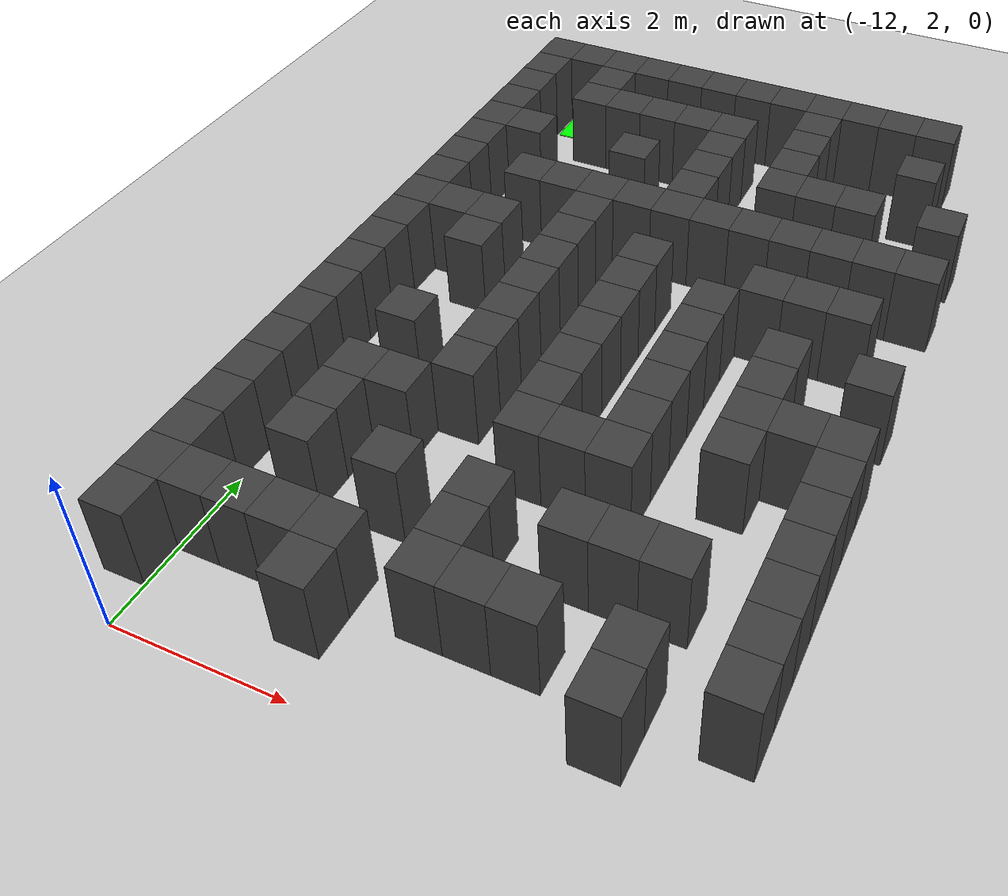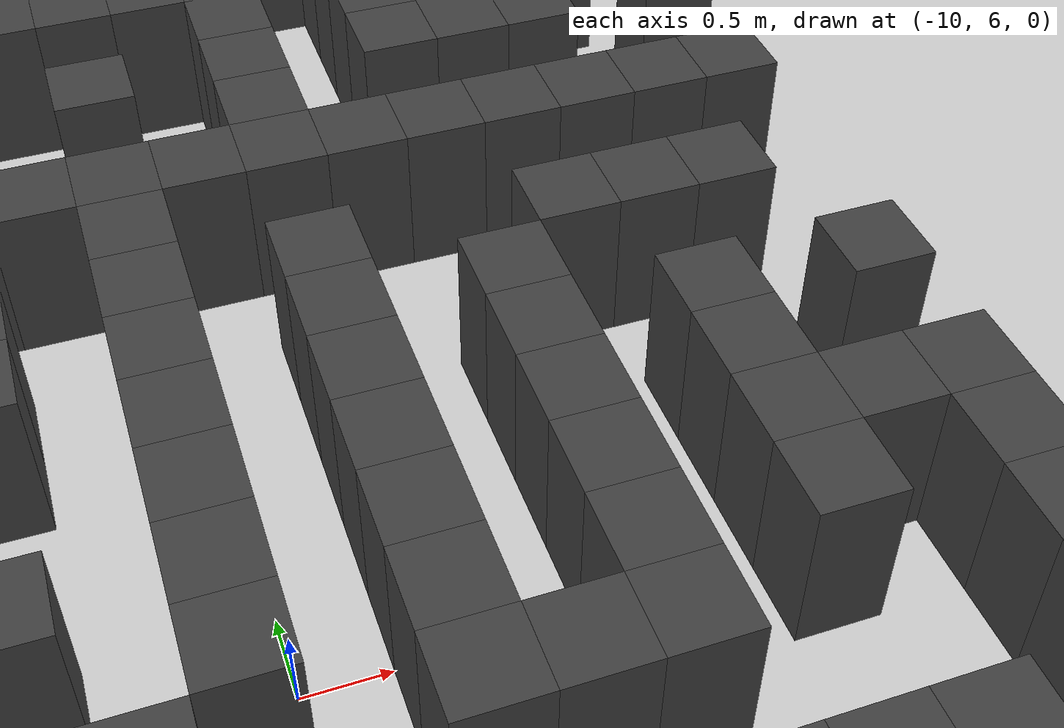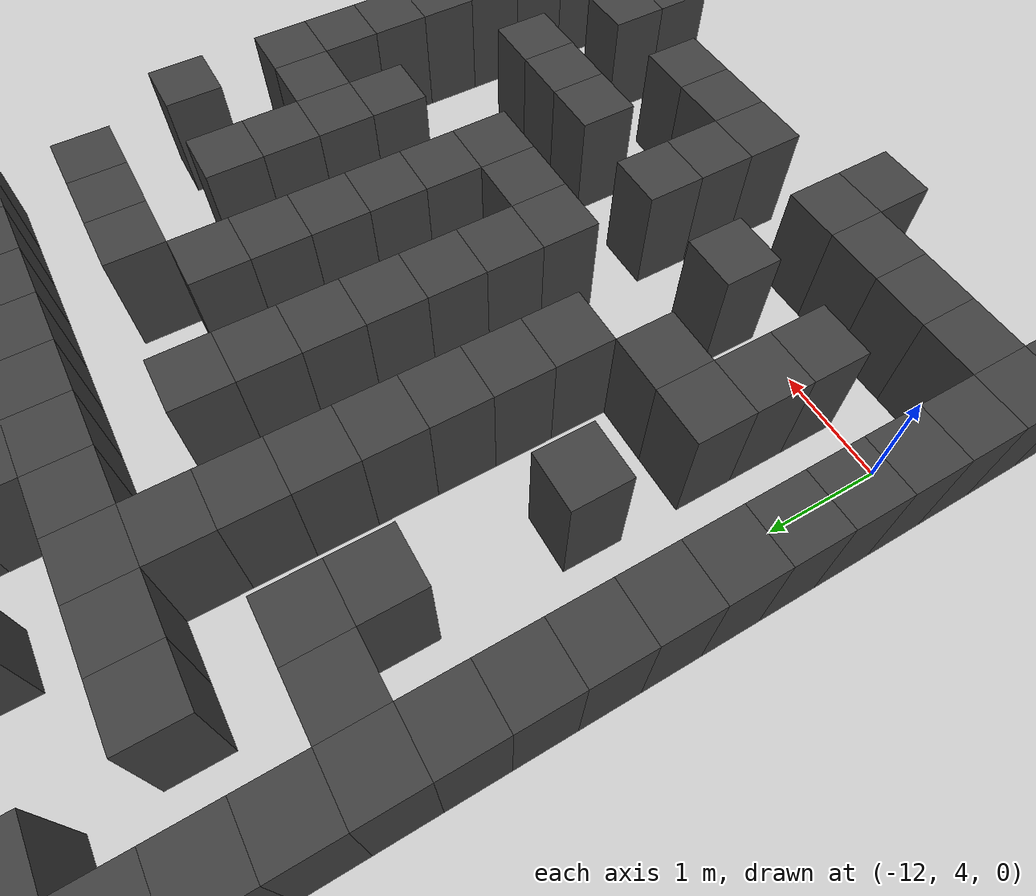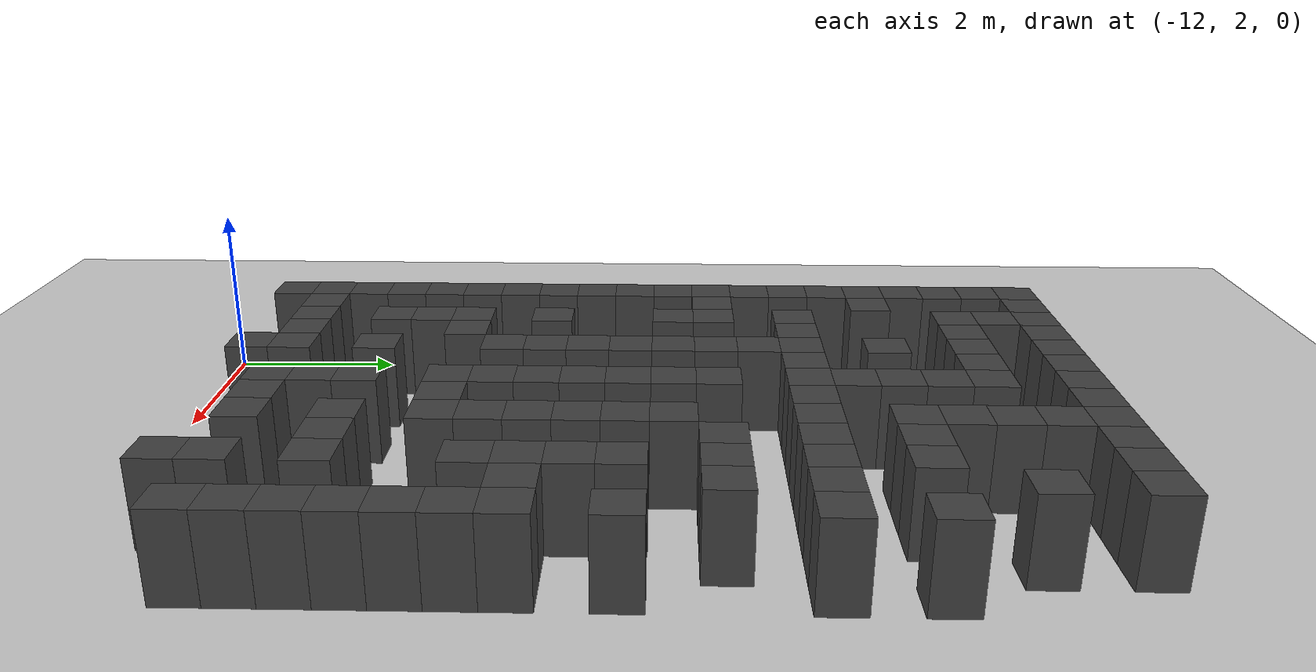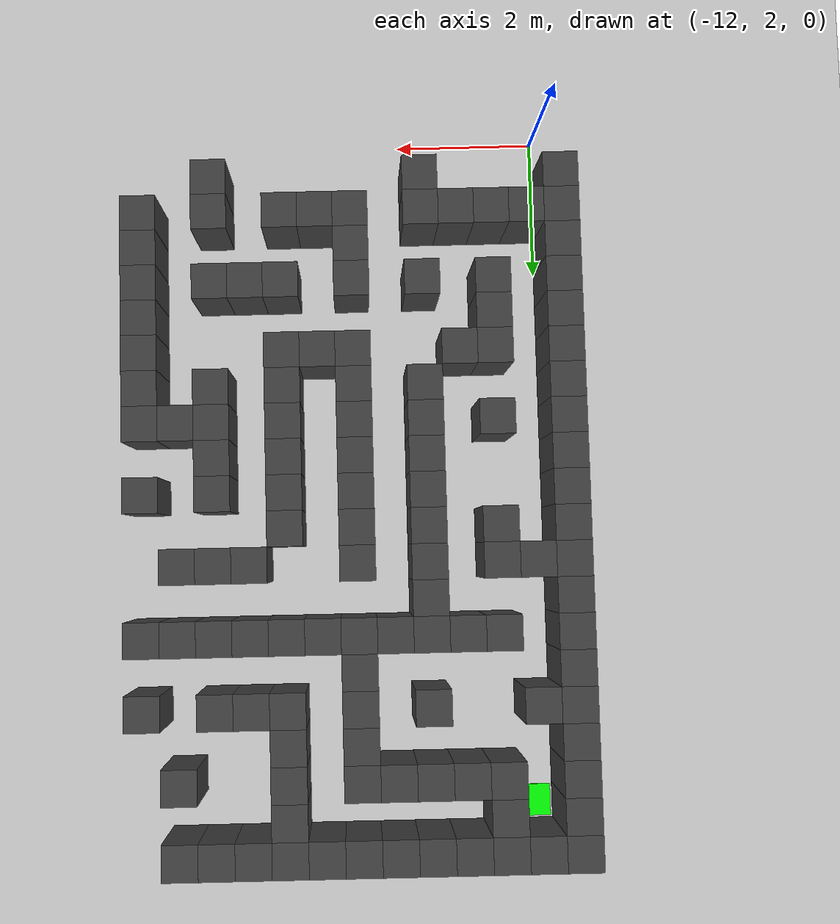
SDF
<sdf version="1.7">
 <world name="map_16048">
  <model name="ground_plane">
   <static>true</static>
   <link name="link">
    <collision name="collision">
     <geometry><plane><normal>0 0 1</normal><size>200 200</size></plane></geometry>
    </collision>
    <visual name="visual">
     <geometry><plane><normal>0 0 1</normal><size>200 200</size></plane></geometry>
     <material><ambient>0.8 0.8 0.8 1</ambient><diffuse>0.8 0.8 0.8 1</diffuse></material>
    </visual>
   </link>
  </model>
  <model name="maze_environment">
   <static>true</static>
   <link name="wall_0">
    <pose>-12.250 12.250 0.500 0 0 0</pose>
    <collision name="col"><geometry><box><size>0.5 0.5 1.0</size></box></geometry></collision>
    <visual name="vis">
     <geometry><box><size>0.5 0.5 1.0</size></box></geometry>
     <material><ambient>0.15 0.15 0.15 1</ambient><diffuse>0.25 0.25 0.25 1</diffuse></material>
    </visual>
   </link>
   <link name="wall_1">
    <pose>-11.750 12.250 0.500 0 0 0</pose>
    <collision name="col"><geometry><box><size>0.5 0.5 1.0</size></box></geometry></collision>
    <visual name="vis">
     <geometry><box><size>0.5 0.5 1.0</size></box></geometry>
     <material><ambient>0.15 0.15 0.15 1</ambient><diffuse>0.25 0.25 0.25 1</diffuse></material>
    </visual>
   </link>
   <link name="wall_2">
    <pose>-11.250 12.250 0.500 0 0 0</pose>
    <collision name="col"><geometry><box><size>0.5 0.5 1.0</size></box></geometry></collision>
    <visual name="vis">
     <geometry><box><size>0.5 0.5 1.0</size></box></geometry>
     <material><ambient>0.15 0.15 0.15 1</ambient><diffuse>0.25 0.25 0.25 1</diffuse></material>
    </visual>
   </link>
   <link name="wall_3">
    <pose>-10.750 12.250 0.500 0 0 0</pose>
    <collision name="col"><geometry><box><size>0.5 0.5 1.0</size></box></geometry></collision>
    <visual name="vis">
     <geometry><box><size>0.5 0.5 1.0</size></box></geometry>
     <material><ambient>0.15 0.15 0.15 1</ambient><diffuse>0.25 0.25 0.25 1</diffuse></material>
    </visual>
   </link>
   <link name="wall_4">
    <pose>-10.250 12.250 0.500 0 0 0</pose>
    <collision name="col"><geometry><box><size>0.5 0.5 1.0</size></box></geometry></collision>
    <visual name="vis">
     <geometry><box><size>0.5 0.5 1.0</size></box></geometry>
     <material><ambient>0.15 0.15 0.15 1</ambient><diffuse>0.25 0.25 0.25 1</diffuse></material>
    </visual>
   </link>
   <link name="wall_5">
    <pose>-9.750 12.250 0.500 0 0 0</pose>
    <collision name="col"><geometry><box><size>0.5 0.5 1.0</size></box></geometry></collision>
    <visual name="vis">
     <geometry><box><size>0.5 0.5 1.0</size></box></geometry>
     <material><ambient>0.15 0.15 0.15 1</ambient><diffuse>0.25 0.25 0.25 1</diffuse></material>
    </visual>
   </link>
   <link name="wall_6">
    <pose>-9.250 12.250 0.500 0 0 0</pose>
    <collision name="col"><geometry><box><size>0.5 0.5 1.0</size></box></geometry></collision>
    <visual name="vis">
     <geometry><box><size>0.5 0.5 1.0</size></box></geometry>
     <material><ambient>0.15 0.15 0.15 1</ambient><diffuse>0.25 0.25 0.25 1</diffuse></material>
    </visual>
   </link>
   <link name="wall_7">
    <pose>-8.750 12.250 0.500 0 0 0</pose>
    <collision name="col"><geometry><box><size>0.5 0.5 1.0</size></box></geometry></collision>
    <visual name="vis">
     <geometry><box><size>0.5 0.5 1.0</size></box></geometry>
     <material><ambient>0.15 0.15 0.15 1</ambient><diffuse>0.25 0.25 0.25 1</diffuse></material>
    </visual>
   </link>
   <link name="wall_8">
    <pose>-8.250 12.250 0.500 0 0 0</pose>
    <collision name="col"><geometry><box><size>0.5 0.5 1.0</size></box></geometry></collision>
    <visual name="vis">
     <geometry><box><size>0.5 0.5 1.0</size></box></geometry>
     <material><ambient>0.15 0.15 0.15 1</ambient><diffuse>0.25 0.25 0.25 1</diffuse></material>
    </visual>
   </link>
   <link name="wall_9">
    <pose>-7.750 12.250 0.500 0 0 0</pose>
    <collision name="col"><geometry><box><size>0.5 0.5 1.0</size></box></geometry></collision>
    <visual name="vis">
     <geometry><box><size>0.5 0.5 1.0</size></box></geometry>
     <material><ambient>0.15 0.15 0.15 1</ambient><diffuse>0.25 0.25 0.25 1</diffuse></material>
    </visual>
   </link>
   <link name="wall_10">
    <pose>-7.250 12.250 0.500 0 0 0</pose>
    <collision name="col"><geometry><box><size>0.5 0.5 1.0</size></box></geometry></collision>
    <visual name="vis">
     <geometry><box><size>0.5 0.5 1.0</size></box></geometry>
     <material><ambient>0.15 0.15 0.15 1</ambient><diffuse>0.25 0.25 0.25 1</diffuse></material>
    </visual>
   </link>
   <link name="wall_11">
    <pose>-6.750 12.250 0.500 0 0 0</pose>
    <collision name="col"><geometry><box><size>0.5 0.5 1.0</size></box></geometry></collision>
    <visual name="vis">
     <geometry><box><size>0.5 0.5 1.0</size></box></geometry>
     <material><ambient>0.15 0.15 0.15 1</ambient><diffuse>0.25 0.25 0.25 1</diffuse></material>
    </visual>
   </link>
   <link name="wall_50">
    <pose>-12.250 11.750 0.500 0 0 0</pose>
    <collision name="col"><geometry><box><size>0.5 0.5 1.0</size></box></geometry></collision>
    <visual name="vis">
     <geometry><box><size>0.5 0.5 1.0</size></box></geometry>
     <material><ambient>0.15 0.15 0.15 1</ambient><diffuse>0.25 0.25 0.25 1</diffuse></material>
    </visual>
   </link>
   <link name="wall_51">
    <pose>-11.250 11.750 0.500 0 0 0</pose>
    <collision name="col"><geometry><box><size>0.5 0.5 1.0</size></box></geometry></collision>
    <visual name="vis">
     <geometry><box><size>0.5 0.5 1.0</size></box></geometry>
     <material><ambient>0.15 0.15 0.15 1</ambient><diffuse>0.25 0.25 0.25 1</diffuse></material>
    </visual>
   </link>
   <link name="wall_52">
    <pose>-8.250 11.750 0.500 0 0 0</pose>
    <collision name="col"><geometry><box><size>0.5 0.5 1.0</size></box></geometry></collision>
    <visual name="vis">
     <geometry><box><size>0.5 0.5 1.0</size></box></geometry>
     <material><ambient>0.15 0.15 0.15 1</ambient><diffuse>0.25 0.25 0.25 1</diffuse></material>
    </visual>
   </link>
   <link name="wall_57">
    <pose>-12.250 11.250 0.500 0 0 0</pose>
    <collision name="col"><geometry><box><size>0.5 0.5 1.0</size></box></geometry></collision>
    <visual name="vis">
     <geometry><box><size>0.5 0.5 1.0</size></box></geometry>
     <material><ambient>0.15 0.15 0.15 1</ambient><diffuse>0.25 0.25 0.25 1</diffuse></material>
    </visual>
   </link>
   <link name="wall_58">
    <pose>-11.250 11.250 0.500 0 0 0</pose>
    <collision name="col"><geometry><box><size>0.5 0.5 1.0</size></box></geometry></collision>
    <visual name="vis">
     <geometry><box><size>0.5 0.5 1.0</size></box></geometry>
     <material><ambient>0.15 0.15 0.15 1</ambient><diffuse>0.25 0.25 0.25 1</diffuse></material>
    </visual>
   </link>
   <link name="wall_59">
    <pose>-10.750 11.250 0.500 0 0 0</pose>
    <collision name="col"><geometry><box><size>0.5 0.5 1.0</size></box></geometry></collision>
    <visual name="vis">
     <geometry><box><size>0.5 0.5 1.0</size></box></geometry>
     <material><ambient>0.15 0.15 0.15 1</ambient><diffuse>0.25 0.25 0.25 1</diffuse></material>
    </visual>
   </link>
   <link name="wall_60">
    <pose>-10.250 11.250 0.500 0 0 0</pose>
    <collision name="col"><geometry><box><size>0.5 0.5 1.0</size></box></geometry></collision>
    <visual name="vis">
     <geometry><box><size>0.5 0.5 1.0</size></box></geometry>
     <material><ambient>0.15 0.15 0.15 1</ambient><diffuse>0.25 0.25 0.25 1</diffuse></material>
    </visual>
   </link>
   <link name="wall_61">
    <pose>-9.750 11.250 0.500 0 0 0</pose>
    <collision name="col"><geometry><box><size>0.5 0.5 1.0</size></box></geometry></collision>
    <visual name="vis">
     <geometry><box><size>0.5 0.5 1.0</size></box></geometry>
     <material><ambient>0.15 0.15 0.15 1</ambient><diffuse>0.25 0.25 0.25 1</diffuse></material>
    </visual>
   </link>
   <link name="wall_62">
    <pose>-9.250 11.250 0.500 0 0 0</pose>
    <collision name="col"><geometry><box><size>0.5 0.5 1.0</size></box></geometry></collision>
    <visual name="vis">
     <geometry><box><size>0.5 0.5 1.0</size></box></geometry>
     <material><ambient>0.15 0.15 0.15 1</ambient><diffuse>0.25 0.25 0.25 1</diffuse></material>
    </visual>
   </link>
   <link name="wall_63">
    <pose>-8.250 11.250 0.500 0 0 0</pose>
    <collision name="col"><geometry><box><size>0.5 0.5 1.0</size></box></geometry></collision>
    <visual name="vis">
     <geometry><box><size>0.5 0.5 1.0</size></box></geometry>
     <material><ambient>0.15 0.15 0.15 1</ambient><diffuse>0.25 0.25 0.25 1</diffuse></material>
    </visual>
   </link>
   <link name="wall_64">
    <pose>-6.750 11.250 0.500 0 0 0</pose>
    <collision name="col"><geometry><box><size>0.5 0.5 1.0</size></box></geometry></collision>
    <visual name="vis">
     <geometry><box><size>0.5 0.5 1.0</size></box></geometry>
     <material><ambient>0.15 0.15 0.15 1</ambient><diffuse>0.25 0.25 0.25 1</diffuse></material>
    </visual>
   </link>
   <link name="wall_93">
    <pose>-12.250 10.750 0.500 0 0 0</pose>
    <collision name="col"><geometry><box><size>0.5 0.5 1.0</size></box></geometry></collision>
    <visual name="vis">
     <geometry><box><size>0.5 0.5 1.0</size></box></geometry>
     <material><ambient>0.15 0.15 0.15 1</ambient><diffuse>0.25 0.25 0.25 1</diffuse></material>
    </visual>
   </link>
   <link name="wall_94">
    <pose>-9.250 10.750 0.500 0 0 0</pose>
    <collision name="col"><geometry><box><size>0.5 0.5 1.0</size></box></geometry></collision>
    <visual name="vis">
     <geometry><box><size>0.5 0.5 1.0</size></box></geometry>
     <material><ambient>0.15 0.15 0.15 1</ambient><diffuse>0.25 0.25 0.25 1</diffuse></material>
    </visual>
   </link>
   <link name="wall_95">
    <pose>-8.250 10.750 0.500 0 0 0</pose>
    <collision name="col"><geometry><box><size>0.5 0.5 1.0</size></box></geometry></collision>
    <visual name="vis">
     <geometry><box><size>0.5 0.5 1.0</size></box></geometry>
     <material><ambient>0.15 0.15 0.15 1</ambient><diffuse>0.25 0.25 0.25 1</diffuse></material>
    </visual>
   </link>
   <link name="wall_105">
    <pose>-12.250 10.250 0.500 0 0 0</pose>
    <collision name="col"><geometry><box><size>0.5 0.5 1.0</size></box></geometry></collision>
    <visual name="vis">
     <geometry><box><size>0.5 0.5 1.0</size></box></geometry>
     <material><ambient>0.15 0.15 0.15 1</ambient><diffuse>0.25 0.25 0.25 1</diffuse></material>
    </visual>
   </link>
   <link name="wall_106">
    <pose>-11.750 10.250 0.500 0 0 0</pose>
    <collision name="col"><geometry><box><size>0.5 0.5 1.0</size></box></geometry></collision>
    <visual name="vis">
     <geometry><box><size>0.5 0.5 1.0</size></box></geometry>
     <material><ambient>0.15 0.15 0.15 1</ambient><diffuse>0.25 0.25 0.25 1</diffuse></material>
    </visual>
   </link>
   <link name="wall_107">
    <pose>-10.250 10.250 0.500 0 0 0</pose>
    <collision name="col"><geometry><box><size>0.5 0.5 1.0</size></box></geometry></collision>
    <visual name="vis">
     <geometry><box><size>0.5 0.5 1.0</size></box></geometry>
     <material><ambient>0.15 0.15 0.15 1</ambient><diffuse>0.25 0.25 0.25 1</diffuse></material>
    </visual>
   </link>
   <link name="wall_108">
    <pose>-9.250 10.250 0.500 0 0 0</pose>
    <collision name="col"><geometry><box><size>0.5 0.5 1.0</size></box></geometry></collision>
    <visual name="vis">
     <geometry><box><size>0.5 0.5 1.0</size></box></geometry>
     <material><ambient>0.15 0.15 0.15 1</ambient><diffuse>0.25 0.25 0.25 1</diffuse></material>
    </visual>
   </link>
   <link name="wall_109">
    <pose>-8.250 10.250 0.500 0 0 0</pose>
    <collision name="col"><geometry><box><size>0.5 0.5 1.0</size></box></geometry></collision>
    <visual name="vis">
     <geometry><box><size>0.5 0.5 1.0</size></box></geometry>
     <material><ambient>0.15 0.15 0.15 1</ambient><diffuse>0.25 0.25 0.25 1</diffuse></material>
    </visual>
   </link>
   <link name="wall_110">
    <pose>-7.750 10.250 0.500 0 0 0</pose>
    <collision name="col"><geometry><box><size>0.5 0.5 1.0</size></box></geometry></collision>
    <visual name="vis">
     <geometry><box><size>0.5 0.5 1.0</size></box></geometry>
     <material><ambient>0.15 0.15 0.15 1</ambient><diffuse>0.25 0.25 0.25 1</diffuse></material>
    </visual>
   </link>
   <link name="wall_111">
    <pose>-7.250 10.250 0.500 0 0 0</pose>
    <collision name="col"><geometry><box><size>0.5 0.5 1.0</size></box></geometry></collision>
    <visual name="vis">
     <geometry><box><size>0.5 0.5 1.0</size></box></geometry>
     <material><ambient>0.15 0.15 0.15 1</ambient><diffuse>0.25 0.25 0.25 1</diffuse></material>
    </visual>
   </link>
   <link name="wall_112">
    <pose>-6.250 10.250 0.500 0 0 0</pose>
    <collision name="col"><geometry><box><size>0.5 0.5 1.0</size></box></geometry></collision>
    <visual name="vis">
     <geometry><box><size>0.5 0.5 1.0</size></box></geometry>
     <material><ambient>0.15 0.15 0.15 1</ambient><diffuse>0.25 0.25 0.25 1</diffuse></material>
    </visual>
   </link>
   <link name="wall_137">
    <pose>-12.250 9.750 0.500 0 0 0</pose>
    <collision name="col"><geometry><box><size>0.5 0.5 1.0</size></box></geometry></collision>
    <visual name="vis">
     <geometry><box><size>0.5 0.5 1.0</size></box></geometry>
     <material><ambient>0.15 0.15 0.15 1</ambient><diffuse>0.25 0.25 0.25 1</diffuse></material>
    </visual>
   </link>
   <link name="wall_138">
    <pose>-9.250 9.750 0.500 0 0 0</pose>
    <collision name="col"><geometry><box><size>0.5 0.5 1.0</size></box></geometry></collision>
    <visual name="vis">
     <geometry><box><size>0.5 0.5 1.0</size></box></geometry>
     <material><ambient>0.15 0.15 0.15 1</ambient><diffuse>0.25 0.25 0.25 1</diffuse></material>
    </visual>
   </link>
   <link name="wall_150">
    <pose>-12.250 9.250 0.500 0 0 0</pose>
    <collision name="col"><geometry><box><size>0.5 0.5 1.0</size></box></geometry></collision>
    <visual name="vis">
     <geometry><box><size>0.5 0.5 1.0</size></box></geometry>
     <material><ambient>0.15 0.15 0.15 1</ambient><diffuse>0.25 0.25 0.25 1</diffuse></material>
    </visual>
   </link>
   <link name="wall_151">
    <pose>-11.250 9.250 0.500 0 0 0</pose>
    <collision name="col"><geometry><box><size>0.5 0.5 1.0</size></box></geometry></collision>
    <visual name="vis">
     <geometry><box><size>0.5 0.5 1.0</size></box></geometry>
     <material><ambient>0.15 0.15 0.15 1</ambient><diffuse>0.25 0.25 0.25 1</diffuse></material>
    </visual>
   </link>
   <link name="wall_152">
    <pose>-10.750 9.250 0.500 0 0 0</pose>
    <collision name="col"><geometry><box><size>0.5 0.5 1.0</size></box></geometry></collision>
    <visual name="vis">
     <geometry><box><size>0.5 0.5 1.0</size></box></geometry>
     <material><ambient>0.15 0.15 0.15 1</ambient><diffuse>0.25 0.25 0.25 1</diffuse></material>
    </visual>
   </link>
   <link name="wall_153">
    <pose>-10.250 9.250 0.500 0 0 0</pose>
    <collision name="col"><geometry><box><size>0.5 0.5 1.0</size></box></geometry></collision>
    <visual name="vis">
     <geometry><box><size>0.5 0.5 1.0</size></box></geometry>
     <material><ambient>0.15 0.15 0.15 1</ambient><diffuse>0.25 0.25 0.25 1</diffuse></material>
    </visual>
   </link>
   <link name="wall_154">
    <pose>-9.750 9.250 0.500 0 0 0</pose>
    <collision name="col"><geometry><box><size>0.5 0.5 1.0</size></box></geometry></collision>
    <visual name="vis">
     <geometry><box><size>0.5 0.5 1.0</size></box></geometry>
     <material><ambient>0.15 0.15 0.15 1</ambient><diffuse>0.25 0.25 0.25 1</diffuse></material>
    </visual>
   </link>
   <link name="wall_155">
    <pose>-9.250 9.250 0.500 0 0 0</pose>
    <collision name="col"><geometry><box><size>0.5 0.5 1.0</size></box></geometry></collision>
    <visual name="vis">
     <geometry><box><size>0.5 0.5 1.0</size></box></geometry>
     <material><ambient>0.15 0.15 0.15 1</ambient><diffuse>0.25 0.25 0.25 1</diffuse></material>
    </visual>
   </link>
   <link name="wall_156">
    <pose>-8.750 9.250 0.500 0 0 0</pose>
    <collision name="col"><geometry><box><size>0.5 0.5 1.0</size></box></geometry></collision>
    <visual name="vis">
     <geometry><box><size>0.5 0.5 1.0</size></box></geometry>
     <material><ambient>0.15 0.15 0.15 1</ambient><diffuse>0.25 0.25 0.25 1</diffuse></material>
    </visual>
   </link>
   <link name="wall_157">
    <pose>-8.250 9.250 0.500 0 0 0</pose>
    <collision name="col"><geometry><box><size>0.5 0.5 1.0</size></box></geometry></collision>
    <visual name="vis">
     <geometry><box><size>0.5 0.5 1.0</size></box></geometry>
     <material><ambient>0.15 0.15 0.15 1</ambient><diffuse>0.25 0.25 0.25 1</diffuse></material>
    </visual>
   </link>
   <link name="wall_158">
    <pose>-7.750 9.250 0.500 0 0 0</pose>
    <collision name="col"><geometry><box><size>0.5 0.5 1.0</size></box></geometry></collision>
    <visual name="vis">
     <geometry><box><size>0.5 0.5 1.0</size></box></geometry>
     <material><ambient>0.15 0.15 0.15 1</ambient><diffuse>0.25 0.25 0.25 1</diffuse></material>
    </visual>
   </link>
   <link name="wall_159">
    <pose>-7.250 9.250 0.500 0 0 0</pose>
    <collision name="col"><geometry><box><size>0.5 0.5 1.0</size></box></geometry></collision>
    <visual name="vis">
     <geometry><box><size>0.5 0.5 1.0</size></box></geometry>
     <material><ambient>0.15 0.15 0.15 1</ambient><diffuse>0.25 0.25 0.25 1</diffuse></material>
    </visual>
   </link>
   <link name="wall_160">
    <pose>-6.750 9.250 0.500 0 0 0</pose>
    <collision name="col"><geometry><box><size>0.5 0.5 1.0</size></box></geometry></collision>
    <visual name="vis">
     <geometry><box><size>0.5 0.5 1.0</size></box></geometry>
     <material><ambient>0.15 0.15 0.15 1</ambient><diffuse>0.25 0.25 0.25 1</diffuse></material>
    </visual>
   </link>
   <link name="wall_161">
    <pose>-6.250 9.250 0.500 0 0 0</pose>
    <collision name="col"><geometry><box><size>0.5 0.5 1.0</size></box></geometry></collision>
    <visual name="vis">
     <geometry><box><size>0.5 0.5 1.0</size></box></geometry>
     <material><ambient>0.15 0.15 0.15 1</ambient><diffuse>0.25 0.25 0.25 1</diffuse></material>
    </visual>
   </link>
   <link name="wall_189">
    <pose>-12.250 8.750 0.500 0 0 0</pose>
    <collision name="col"><geometry><box><size>0.5 0.5 1.0</size></box></geometry></collision>
    <visual name="vis">
     <geometry><box><size>0.5 0.5 1.0</size></box></geometry>
     <material><ambient>0.15 0.15 0.15 1</ambient><diffuse>0.25 0.25 0.25 1</diffuse></material>
    </visual>
   </link>
   <link name="wall_190">
    <pose>-10.250 8.750 0.500 0 0 0</pose>
    <collision name="col"><geometry><box><size>0.5 0.5 1.0</size></box></geometry></collision>
    <visual name="vis">
     <geometry><box><size>0.5 0.5 1.0</size></box></geometry>
     <material><ambient>0.15 0.15 0.15 1</ambient><diffuse>0.25 0.25 0.25 1</diffuse></material>
    </visual>
   </link>
   <link name="wall_200">
    <pose>-12.250 8.250 0.500 0 0 0</pose>
    <collision name="col"><geometry><box><size>0.5 0.5 1.0</size></box></geometry></collision>
    <visual name="vis">
     <geometry><box><size>0.5 0.5 1.0</size></box></geometry>
     <material><ambient>0.15 0.15 0.15 1</ambient><diffuse>0.25 0.25 0.25 1</diffuse></material>
    </visual>
   </link>
   <link name="wall_201">
    <pose>-11.750 8.250 0.500 0 0 0</pose>
    <collision name="col"><geometry><box><size>0.5 0.5 1.0</size></box></geometry></collision>
    <visual name="vis">
     <geometry><box><size>0.5 0.5 1.0</size></box></geometry>
     <material><ambient>0.15 0.15 0.15 1</ambient><diffuse>0.25 0.25 0.25 1</diffuse></material>
    </visual>
   </link>
   <link name="wall_202">
    <pose>-11.250 8.250 0.500 0 0 0</pose>
    <collision name="col"><geometry><box><size>0.5 0.5 1.0</size></box></geometry></collision>
    <visual name="vis">
     <geometry><box><size>0.5 0.5 1.0</size></box></geometry>
     <material><ambient>0.15 0.15 0.15 1</ambient><diffuse>0.25 0.25 0.25 1</diffuse></material>
    </visual>
   </link>
   <link name="wall_203">
    <pose>-10.250 8.250 0.500 0 0 0</pose>
    <collision name="col"><geometry><box><size>0.5 0.5 1.0</size></box></geometry></collision>
    <visual name="vis">
     <geometry><box><size>0.5 0.5 1.0</size></box></geometry>
     <material><ambient>0.15 0.15 0.15 1</ambient><diffuse>0.25 0.25 0.25 1</diffuse></material>
    </visual>
   </link>
   <link name="wall_204">
    <pose>-9.250 8.250 0.500 0 0 0</pose>
    <collision name="col"><geometry><box><size>0.5 0.5 1.0</size></box></geometry></collision>
    <visual name="vis">
     <geometry><box><size>0.5 0.5 1.0</size></box></geometry>
     <material><ambient>0.15 0.15 0.15 1</ambient><diffuse>0.25 0.25 0.25 1</diffuse></material>
    </visual>
   </link>
   <link name="wall_205">
    <pose>-7.750 8.250 0.500 0 0 0</pose>
    <collision name="col"><geometry><box><size>0.5 0.5 1.0</size></box></geometry></collision>
    <visual name="vis">
     <geometry><box><size>0.5 0.5 1.0</size></box></geometry>
     <material><ambient>0.15 0.15 0.15 1</ambient><diffuse>0.25 0.25 0.25 1</diffuse></material>
    </visual>
   </link>
   <link name="wall_206">
    <pose>-7.250 8.250 0.500 0 0 0</pose>
    <collision name="col"><geometry><box><size>0.5 0.5 1.0</size></box></geometry></collision>
    <visual name="vis">
     <geometry><box><size>0.5 0.5 1.0</size></box></geometry>
     <material><ambient>0.15 0.15 0.15 1</ambient><diffuse>0.25 0.25 0.25 1</diffuse></material>
    </visual>
   </link>
   <link name="wall_207">
    <pose>-6.750 8.250 0.500 0 0 0</pose>
    <collision name="col"><geometry><box><size>0.5 0.5 1.0</size></box></geometry></collision>
    <visual name="vis">
     <geometry><box><size>0.5 0.5 1.0</size></box></geometry>
     <material><ambient>0.15 0.15 0.15 1</ambient><diffuse>0.25 0.25 0.25 1</diffuse></material>
    </visual>
   </link>
   <link name="wall_232">
    <pose>-12.250 7.750 0.500 0 0 0</pose>
    <collision name="col"><geometry><box><size>0.5 0.5 1.0</size></box></geometry></collision>
    <visual name="vis">
     <geometry><box><size>0.5 0.5 1.0</size></box></geometry>
     <material><ambient>0.15 0.15 0.15 1</ambient><diffuse>0.25 0.25 0.25 1</diffuse></material>
    </visual>
   </link>
   <link name="wall_233">
    <pose>-11.250 7.750 0.500 0 0 0</pose>
    <collision name="col"><geometry><box><size>0.5 0.5 1.0</size></box></geometry></collision>
    <visual name="vis">
     <geometry><box><size>0.5 0.5 1.0</size></box></geometry>
     <material><ambient>0.15 0.15 0.15 1</ambient><diffuse>0.25 0.25 0.25 1</diffuse></material>
    </visual>
   </link>
   <link name="wall_234">
    <pose>-10.250 7.750 0.500 0 0 0</pose>
    <collision name="col"><geometry><box><size>0.5 0.5 1.0</size></box></geometry></collision>
    <visual name="vis">
     <geometry><box><size>0.5 0.5 1.0</size></box></geometry>
     <material><ambient>0.15 0.15 0.15 1</ambient><diffuse>0.25 0.25 0.25 1</diffuse></material>
    </visual>
   </link>
   <link name="wall_235">
    <pose>-9.250 7.750 0.500 0 0 0</pose>
    <collision name="col"><geometry><box><size>0.5 0.5 1.0</size></box></geometry></collision>
    <visual name="vis">
     <geometry><box><size>0.5 0.5 1.0</size></box></geometry>
     <material><ambient>0.15 0.15 0.15 1</ambient><diffuse>0.25 0.25 0.25 1</diffuse></material>
    </visual>
   </link>
   <link name="wall_236">
    <pose>-8.250 7.750 0.500 0 0 0</pose>
    <collision name="col"><geometry><box><size>0.5 0.5 1.0</size></box></geometry></collision>
    <visual name="vis">
     <geometry><box><size>0.5 0.5 1.0</size></box></geometry>
     <material><ambient>0.15 0.15 0.15 1</ambient><diffuse>0.25 0.25 0.25 1</diffuse></material>
    </visual>
   </link>
   <link name="wall_248">
    <pose>-12.250 7.250 0.500 0 0 0</pose>
    <collision name="col"><geometry><box><size>0.5 0.5 1.0</size></box></geometry></collision>
    <visual name="vis">
     <geometry><box><size>0.5 0.5 1.0</size></box></geometry>
     <material><ambient>0.15 0.15 0.15 1</ambient><diffuse>0.25 0.25 0.25 1</diffuse></material>
    </visual>
   </link>
   <link name="wall_249">
    <pose>-10.250 7.250 0.500 0 0 0</pose>
    <collision name="col"><geometry><box><size>0.5 0.5 1.0</size></box></geometry></collision>
    <visual name="vis">
     <geometry><box><size>0.5 0.5 1.0</size></box></geometry>
     <material><ambient>0.15 0.15 0.15 1</ambient><diffuse>0.25 0.25 0.25 1</diffuse></material>
    </visual>
   </link>
   <link name="wall_250">
    <pose>-9.250 7.250 0.500 0 0 0</pose>
    <collision name="col"><geometry><box><size>0.5 0.5 1.0</size></box></geometry></collision>
    <visual name="vis">
     <geometry><box><size>0.5 0.5 1.0</size></box></geometry>
     <material><ambient>0.15 0.15 0.15 1</ambient><diffuse>0.25 0.25 0.25 1</diffuse></material>
    </visual>
   </link>
   <link name="wall_251">
    <pose>-8.250 7.250 0.500 0 0 0</pose>
    <collision name="col"><geometry><box><size>0.5 0.5 1.0</size></box></geometry></collision>
    <visual name="vis">
     <geometry><box><size>0.5 0.5 1.0</size></box></geometry>
     <material><ambient>0.15 0.15 0.15 1</ambient><diffuse>0.25 0.25 0.25 1</diffuse></material>
    </visual>
   </link>
   <link name="wall_252">
    <pose>-7.250 7.250 0.500 0 0 0</pose>
    <collision name="col"><geometry><box><size>0.5 0.5 1.0</size></box></geometry></collision>
    <visual name="vis">
     <geometry><box><size>0.5 0.5 1.0</size></box></geometry>
     <material><ambient>0.15 0.15 0.15 1</ambient><diffuse>0.25 0.25 0.25 1</diffuse></material>
    </visual>
   </link>
   <link name="wall_253">
    <pose>-6.250 7.250 0.500 0 0 0</pose>
    <collision name="col"><geometry><box><size>0.5 0.5 1.0</size></box></geometry></collision>
    <visual name="vis">
     <geometry><box><size>0.5 0.5 1.0</size></box></geometry>
     <material><ambient>0.15 0.15 0.15 1</ambient><diffuse>0.25 0.25 0.25 1</diffuse></material>
    </visual>
   </link>
   <link name="wall_282">
    <pose>-12.250 6.750 0.500 0 0 0</pose>
    <collision name="col"><geometry><box><size>0.5 0.5 1.0</size></box></geometry></collision>
    <visual name="vis">
     <geometry><box><size>0.5 0.5 1.0</size></box></geometry>
     <material><ambient>0.15 0.15 0.15 1</ambient><diffuse>0.25 0.25 0.25 1</diffuse></material>
    </visual>
   </link>
   <link name="wall_283">
    <pose>-10.250 6.750 0.500 0 0 0</pose>
    <collision name="col"><geometry><box><size>0.5 0.5 1.0</size></box></geometry></collision>
    <visual name="vis">
     <geometry><box><size>0.5 0.5 1.0</size></box></geometry>
     <material><ambient>0.15 0.15 0.15 1</ambient><diffuse>0.25 0.25 0.25 1</diffuse></material>
    </visual>
   </link>
   <link name="wall_284">
    <pose>-9.250 6.750 0.500 0 0 0</pose>
    <collision name="col"><geometry><box><size>0.5 0.5 1.0</size></box></geometry></collision>
    <visual name="vis">
     <geometry><box><size>0.5 0.5 1.0</size></box></geometry>
     <material><ambient>0.15 0.15 0.15 1</ambient><diffuse>0.25 0.25 0.25 1</diffuse></material>
    </visual>
   </link>
   <link name="wall_285">
    <pose>-8.250 6.750 0.500 0 0 0</pose>
    <collision name="col"><geometry><box><size>0.5 0.5 1.0</size></box></geometry></collision>
    <visual name="vis">
     <geometry><box><size>0.5 0.5 1.0</size></box></geometry>
     <material><ambient>0.15 0.15 0.15 1</ambient><diffuse>0.25 0.25 0.25 1</diffuse></material>
    </visual>
   </link>
   <link name="wall_286">
    <pose>-7.250 6.750 0.500 0 0 0</pose>
    <collision name="col"><geometry><box><size>0.5 0.5 1.0</size></box></geometry></collision>
    <visual name="vis">
     <geometry><box><size>0.5 0.5 1.0</size></box></geometry>
     <material><ambient>0.15 0.15 0.15 1</ambient><diffuse>0.25 0.25 0.25 1</diffuse></material>
    </visual>
   </link>
   <link name="wall_297">
    <pose>-12.250 6.250 0.500 0 0 0</pose>
    <collision name="col"><geometry><box><size>0.5 0.5 1.0</size></box></geometry></collision>
    <visual name="vis">
     <geometry><box><size>0.5 0.5 1.0</size></box></geometry>
     <material><ambient>0.15 0.15 0.15 1</ambient><diffuse>0.25 0.25 0.25 1</diffuse></material>
    </visual>
   </link>
   <link name="wall_298">
    <pose>-11.250 6.250 0.500 0 0 0</pose>
    <collision name="col"><geometry><box><size>0.5 0.5 1.0</size></box></geometry></collision>
    <visual name="vis">
     <geometry><box><size>0.5 0.5 1.0</size></box></geometry>
     <material><ambient>0.15 0.15 0.15 1</ambient><diffuse>0.25 0.25 0.25 1</diffuse></material>
    </visual>
   </link>
   <link name="wall_299">
    <pose>-10.250 6.250 0.500 0 0 0</pose>
    <collision name="col"><geometry><box><size>0.5 0.5 1.0</size></box></geometry></collision>
    <visual name="vis">
     <geometry><box><size>0.5 0.5 1.0</size></box></geometry>
     <material><ambient>0.15 0.15 0.15 1</ambient><diffuse>0.25 0.25 0.25 1</diffuse></material>
    </visual>
   </link>
   <link name="wall_300">
    <pose>-9.250 6.250 0.500 0 0 0</pose>
    <collision name="col"><geometry><box><size>0.5 0.5 1.0</size></box></geometry></collision>
    <visual name="vis">
     <geometry><box><size>0.5 0.5 1.0</size></box></geometry>
     <material><ambient>0.15 0.15 0.15 1</ambient><diffuse>0.25 0.25 0.25 1</diffuse></material>
    </visual>
   </link>
   <link name="wall_301">
    <pose>-8.250 6.250 0.500 0 0 0</pose>
    <collision name="col"><geometry><box><size>0.5 0.5 1.0</size></box></geometry></collision>
    <visual name="vis">
     <geometry><box><size>0.5 0.5 1.0</size></box></geometry>
     <material><ambient>0.15 0.15 0.15 1</ambient><diffuse>0.25 0.25 0.25 1</diffuse></material>
    </visual>
   </link>
   <link name="wall_302">
    <pose>-7.250 6.250 0.500 0 0 0</pose>
    <collision name="col"><geometry><box><size>0.5 0.5 1.0</size></box></geometry></collision>
    <visual name="vis">
     <geometry><box><size>0.5 0.5 1.0</size></box></geometry>
     <material><ambient>0.15 0.15 0.15 1</ambient><diffuse>0.25 0.25 0.25 1</diffuse></material>
    </visual>
   </link>
   <link name="wall_303">
    <pose>-6.750 6.250 0.500 0 0 0</pose>
    <collision name="col"><geometry><box><size>0.5 0.5 1.0</size></box></geometry></collision>
    <visual name="vis">
     <geometry><box><size>0.5 0.5 1.0</size></box></geometry>
     <material><ambient>0.15 0.15 0.15 1</ambient><diffuse>0.25 0.25 0.25 1</diffuse></material>
    </visual>
   </link>
   <link name="wall_304">
    <pose>-6.250 6.250 0.500 0 0 0</pose>
    <collision name="col"><geometry><box><size>0.5 0.5 1.0</size></box></geometry></collision>
    <visual name="vis">
     <geometry><box><size>0.5 0.5 1.0</size></box></geometry>
     <material><ambient>0.15 0.15 0.15 1</ambient><diffuse>0.25 0.25 0.25 1</diffuse></material>
    </visual>
   </link>
   <link name="wall_330">
    <pose>-12.250 5.750 0.500 0 0 0</pose>
    <collision name="col"><geometry><box><size>0.5 0.5 1.0</size></box></geometry></collision>
    <visual name="vis">
     <geometry><box><size>0.5 0.5 1.0</size></box></geometry>
     <material><ambient>0.15 0.15 0.15 1</ambient><diffuse>0.25 0.25 0.25 1</diffuse></material>
    </visual>
   </link>
   <link name="wall_331">
    <pose>-10.250 5.750 0.500 0 0 0</pose>
    <collision name="col"><geometry><box><size>0.5 0.5 1.0</size></box></geometry></collision>
    <visual name="vis">
     <geometry><box><size>0.5 0.5 1.0</size></box></geometry>
     <material><ambient>0.15 0.15 0.15 1</ambient><diffuse>0.25 0.25 0.25 1</diffuse></material>
    </visual>
   </link>
   <link name="wall_332">
    <pose>-9.250 5.750 0.500 0 0 0</pose>
    <collision name="col"><geometry><box><size>0.5 0.5 1.0</size></box></geometry></collision>
    <visual name="vis">
     <geometry><box><size>0.5 0.5 1.0</size></box></geometry>
     <material><ambient>0.15 0.15 0.15 1</ambient><diffuse>0.25 0.25 0.25 1</diffuse></material>
    </visual>
   </link>
   <link name="wall_333">
    <pose>-8.250 5.750 0.500 0 0 0</pose>
    <collision name="col"><geometry><box><size>0.5 0.5 1.0</size></box></geometry></collision>
    <visual name="vis">
     <geometry><box><size>0.5 0.5 1.0</size></box></geometry>
     <material><ambient>0.15 0.15 0.15 1</ambient><diffuse>0.25 0.25 0.25 1</diffuse></material>
    </visual>
   </link>
   <link name="wall_334">
    <pose>-7.250 5.750 0.500 0 0 0</pose>
    <collision name="col"><geometry><box><size>0.5 0.5 1.0</size></box></geometry></collision>
    <visual name="vis">
     <geometry><box><size>0.5 0.5 1.0</size></box></geometry>
     <material><ambient>0.15 0.15 0.15 1</ambient><diffuse>0.25 0.25 0.25 1</diffuse></material>
    </visual>
   </link>
   <link name="wall_335">
    <pose>-6.250 5.750 0.500 0 0 0</pose>
    <collision name="col"><geometry><box><size>0.5 0.5 1.0</size></box></geometry></collision>
    <visual name="vis">
     <geometry><box><size>0.5 0.5 1.0</size></box></geometry>
     <material><ambient>0.15 0.15 0.15 1</ambient><diffuse>0.25 0.25 0.25 1</diffuse></material>
    </visual>
   </link>
   <link name="wall_345">
    <pose>-12.250 5.250 0.500 0 0 0</pose>
    <collision name="col"><geometry><box><size>0.5 0.5 1.0</size></box></geometry></collision>
    <visual name="vis">
     <geometry><box><size>0.5 0.5 1.0</size></box></geometry>
     <material><ambient>0.15 0.15 0.15 1</ambient><diffuse>0.25 0.25 0.25 1</diffuse></material>
    </visual>
   </link>
   <link name="wall_346">
    <pose>-11.250 5.250 0.500 0 0 0</pose>
    <collision name="col"><geometry><box><size>0.5 0.5 1.0</size></box></geometry></collision>
    <visual name="vis">
     <geometry><box><size>0.5 0.5 1.0</size></box></geometry>
     <material><ambient>0.15 0.15 0.15 1</ambient><diffuse>0.25 0.25 0.25 1</diffuse></material>
    </visual>
   </link>
   <link name="wall_347">
    <pose>-10.750 5.250 0.500 0 0 0</pose>
    <collision name="col"><geometry><box><size>0.5 0.5 1.0</size></box></geometry></collision>
    <visual name="vis">
     <geometry><box><size>0.5 0.5 1.0</size></box></geometry>
     <material><ambient>0.15 0.15 0.15 1</ambient><diffuse>0.25 0.25 0.25 1</diffuse></material>
    </visual>
   </link>
   <link name="wall_348">
    <pose>-9.250 5.250 0.500 0 0 0</pose>
    <collision name="col"><geometry><box><size>0.5 0.5 1.0</size></box></geometry></collision>
    <visual name="vis">
     <geometry><box><size>0.5 0.5 1.0</size></box></geometry>
     <material><ambient>0.15 0.15 0.15 1</ambient><diffuse>0.25 0.25 0.25 1</diffuse></material>
    </visual>
   </link>
   <link name="wall_349">
    <pose>-8.750 5.250 0.500 0 0 0</pose>
    <collision name="col"><geometry><box><size>0.5 0.5 1.0</size></box></geometry></collision>
    <visual name="vis">
     <geometry><box><size>0.5 0.5 1.0</size></box></geometry>
     <material><ambient>0.15 0.15 0.15 1</ambient><diffuse>0.25 0.25 0.25 1</diffuse></material>
    </visual>
   </link>
   <link name="wall_350">
    <pose>-8.250 5.250 0.500 0 0 0</pose>
    <collision name="col"><geometry><box><size>0.5 0.5 1.0</size></box></geometry></collision>
    <visual name="vis">
     <geometry><box><size>0.5 0.5 1.0</size></box></geometry>
     <material><ambient>0.15 0.15 0.15 1</ambient><diffuse>0.25 0.25 0.25 1</diffuse></material>
    </visual>
   </link>
   <link name="wall_351">
    <pose>-6.250 5.250 0.500 0 0 0</pose>
    <collision name="col"><geometry><box><size>0.5 0.5 1.0</size></box></geometry></collision>
    <visual name="vis">
     <geometry><box><size>0.5 0.5 1.0</size></box></geometry>
     <material><ambient>0.15 0.15 0.15 1</ambient><diffuse>0.25 0.25 0.25 1</diffuse></material>
    </visual>
   </link>
   <link name="wall_375">
    <pose>-12.250 4.750 0.500 0 0 0</pose>
    <collision name="col"><geometry><box><size>0.5 0.5 1.0</size></box></geometry></collision>
    <visual name="vis">
     <geometry><box><size>0.5 0.5 1.0</size></box></geometry>
     <material><ambient>0.15 0.15 0.15 1</ambient><diffuse>0.25 0.25 0.25 1</diffuse></material>
    </visual>
   </link>
   <link name="wall_376">
    <pose>-11.250 4.750 0.500 0 0 0</pose>
    <collision name="col"><geometry><box><size>0.5 0.5 1.0</size></box></geometry></collision>
    <visual name="vis">
     <geometry><box><size>0.5 0.5 1.0</size></box></geometry>
     <material><ambient>0.15 0.15 0.15 1</ambient><diffuse>0.25 0.25 0.25 1</diffuse></material>
    </visual>
   </link>
   <link name="wall_377">
    <pose>-6.250 4.750 0.500 0 0 0</pose>
    <collision name="col"><geometry><box><size>0.5 0.5 1.0</size></box></geometry></collision>
    <visual name="vis">
     <geometry><box><size>0.5 0.5 1.0</size></box></geometry>
     <material><ambient>0.15 0.15 0.15 1</ambient><diffuse>0.25 0.25 0.25 1</diffuse></material>
    </visual>
   </link>
   <link name="wall_387">
    <pose>-12.250 4.250 0.500 0 0 0</pose>
    <collision name="col"><geometry><box><size>0.5 0.5 1.0</size></box></geometry></collision>
    <visual name="vis">
     <geometry><box><size>0.5 0.5 1.0</size></box></geometry>
     <material><ambient>0.15 0.15 0.15 1</ambient><diffuse>0.25 0.25 0.25 1</diffuse></material>
    </visual>
   </link>
   <link name="wall_388">
    <pose>-11.250 4.250 0.500 0 0 0</pose>
    <collision name="col"><geometry><box><size>0.5 0.5 1.0</size></box></geometry></collision>
    <visual name="vis">
     <geometry><box><size>0.5 0.5 1.0</size></box></geometry>
     <material><ambient>0.15 0.15 0.15 1</ambient><diffuse>0.25 0.25 0.25 1</diffuse></material>
    </visual>
   </link>
   <link name="wall_389">
    <pose>-10.250 4.250 0.500 0 0 0</pose>
    <collision name="col"><geometry><box><size>0.5 0.5 1.0</size></box></geometry></collision>
    <visual name="vis">
     <geometry><box><size>0.5 0.5 1.0</size></box></geometry>
     <material><ambient>0.15 0.15 0.15 1</ambient><diffuse>0.25 0.25 0.25 1</diffuse></material>
    </visual>
   </link>
   <link name="wall_390">
    <pose>-9.250 4.250 0.500 0 0 0</pose>
    <collision name="col"><geometry><box><size>0.5 0.5 1.0</size></box></geometry></collision>
    <visual name="vis">
     <geometry><box><size>0.5 0.5 1.0</size></box></geometry>
     <material><ambient>0.15 0.15 0.15 1</ambient><diffuse>0.25 0.25 0.25 1</diffuse></material>
    </visual>
   </link>
   <link name="wall_391">
    <pose>-8.250 4.250 0.500 0 0 0</pose>
    <collision name="col"><geometry><box><size>0.5 0.5 1.0</size></box></geometry></collision>
    <visual name="vis">
     <geometry><box><size>0.5 0.5 1.0</size></box></geometry>
     <material><ambient>0.15 0.15 0.15 1</ambient><diffuse>0.25 0.25 0.25 1</diffuse></material>
    </visual>
   </link>
   <link name="wall_392">
    <pose>-7.750 4.250 0.500 0 0 0</pose>
    <collision name="col"><geometry><box><size>0.5 0.5 1.0</size></box></geometry></collision>
    <visual name="vis">
     <geometry><box><size>0.5 0.5 1.0</size></box></geometry>
     <material><ambient>0.15 0.15 0.15 1</ambient><diffuse>0.25 0.25 0.25 1</diffuse></material>
    </visual>
   </link>
   <link name="wall_393">
    <pose>-7.250 4.250 0.500 0 0 0</pose>
    <collision name="col"><geometry><box><size>0.5 0.5 1.0</size></box></geometry></collision>
    <visual name="vis">
     <geometry><box><size>0.5 0.5 1.0</size></box></geometry>
     <material><ambient>0.15 0.15 0.15 1</ambient><diffuse>0.25 0.25 0.25 1</diffuse></material>
    </visual>
   </link>
   <link name="wall_394">
    <pose>-6.250 4.250 0.500 0 0 0</pose>
    <collision name="col"><geometry><box><size>0.5 0.5 1.0</size></box></geometry></collision>
    <visual name="vis">
     <geometry><box><size>0.5 0.5 1.0</size></box></geometry>
     <material><ambient>0.15 0.15 0.15 1</ambient><diffuse>0.25 0.25 0.25 1</diffuse></material>
    </visual>
   </link>
   <link name="wall_416">
    <pose>-12.250 3.750 0.500 0 0 0</pose>
    <collision name="col"><geometry><box><size>0.5 0.5 1.0</size></box></geometry></collision>
    <visual name="vis">
     <geometry><box><size>0.5 0.5 1.0</size></box></geometry>
     <material><ambient>0.15 0.15 0.15 1</ambient><diffuse>0.25 0.25 0.25 1</diffuse></material>
    </visual>
   </link>
   <link name="wall_417">
    <pose>-9.250 3.750 0.500 0 0 0</pose>
    <collision name="col"><geometry><box><size>0.5 0.5 1.0</size></box></geometry></collision>
    <visual name="vis">
     <geometry><box><size>0.5 0.5 1.0</size></box></geometry>
     <material><ambient>0.15 0.15 0.15 1</ambient><diffuse>0.25 0.25 0.25 1</diffuse></material>
    </visual>
   </link>
   <link name="wall_418">
    <pose>-6.250 3.750 0.500 0 0 0</pose>
    <collision name="col"><geometry><box><size>0.5 0.5 1.0</size></box></geometry></collision>
    <visual name="vis">
     <geometry><box><size>0.5 0.5 1.0</size></box></geometry>
     <material><ambient>0.15 0.15 0.15 1</ambient><diffuse>0.25 0.25 0.25 1</diffuse></material>
    </visual>
   </link>
   <link name="wall_428">
    <pose>-12.250 3.250 0.500 0 0 0</pose>
    <collision name="col"><geometry><box><size>0.5 0.5 1.0</size></box></geometry></collision>
    <visual name="vis">
     <geometry><box><size>0.5 0.5 1.0</size></box></geometry>
     <material><ambient>0.15 0.15 0.15 1</ambient><diffuse>0.25 0.25 0.25 1</diffuse></material>
    </visual>
   </link>
   <link name="wall_429">
    <pose>-11.750 3.250 0.500 0 0 0</pose>
    <collision name="col"><geometry><box><size>0.5 0.5 1.0</size></box></geometry></collision>
    <visual name="vis">
     <geometry><box><size>0.5 0.5 1.0</size></box></geometry>
     <material><ambient>0.15 0.15 0.15 1</ambient><diffuse>0.25 0.25 0.25 1</diffuse></material>
    </visual>
   </link>
   <link name="wall_430">
    <pose>-11.250 3.250 0.500 0 0 0</pose>
    <collision name="col"><geometry><box><size>0.5 0.5 1.0</size></box></geometry></collision>
    <visual name="vis">
     <geometry><box><size>0.5 0.5 1.0</size></box></geometry>
     <material><ambient>0.15 0.15 0.15 1</ambient><diffuse>0.25 0.25 0.25 1</diffuse></material>
    </visual>
   </link>
   <link name="wall_431">
    <pose>-10.750 3.250 0.500 0 0 0</pose>
    <collision name="col"><geometry><box><size>0.5 0.5 1.0</size></box></geometry></collision>
    <visual name="vis">
     <geometry><box><size>0.5 0.5 1.0</size></box></geometry>
     <material><ambient>0.15 0.15 0.15 1</ambient><diffuse>0.25 0.25 0.25 1</diffuse></material>
    </visual>
   </link>
   <link name="wall_432">
    <pose>-10.250 3.250 0.500 0 0 0</pose>
    <collision name="col"><geometry><box><size>0.5 0.5 1.0</size></box></geometry></collision>
    <visual name="vis">
     <geometry><box><size>0.5 0.5 1.0</size></box></geometry>
     <material><ambient>0.15 0.15 0.15 1</ambient><diffuse>0.25 0.25 0.25 1</diffuse></material>
    </visual>
   </link>
   <link name="wall_433">
    <pose>-9.250 3.250 0.500 0 0 0</pose>
    <collision name="col"><geometry><box><size>0.5 0.5 1.0</size></box></geometry></collision>
    <visual name="vis">
     <geometry><box><size>0.5 0.5 1.0</size></box></geometry>
     <material><ambient>0.15 0.15 0.15 1</ambient><diffuse>0.25 0.25 0.25 1</diffuse></material>
    </visual>
   </link>
   <link name="wall_434">
    <pose>-8.750 3.250 0.500 0 0 0</pose>
    <collision name="col"><geometry><box><size>0.5 0.5 1.0</size></box></geometry></collision>
    <visual name="vis">
     <geometry><box><size>0.5 0.5 1.0</size></box></geometry>
     <material><ambient>0.15 0.15 0.15 1</ambient><diffuse>0.25 0.25 0.25 1</diffuse></material>
    </visual>
   </link>
   <link name="wall_435">
    <pose>-8.250 3.250 0.500 0 0 0</pose>
    <collision name="col"><geometry><box><size>0.5 0.5 1.0</size></box></geometry></collision>
    <visual name="vis">
     <geometry><box><size>0.5 0.5 1.0</size></box></geometry>
     <material><ambient>0.15 0.15 0.15 1</ambient><diffuse>0.25 0.25 0.25 1</diffuse></material>
    </visual>
   </link>
   <link name="wall_436">
    <pose>-7.250 3.250 0.500 0 0 0</pose>
    <collision name="col"><geometry><box><size>0.5 0.5 1.0</size></box></geometry></collision>
    <visual name="vis">
     <geometry><box><size>0.5 0.5 1.0</size></box></geometry>
     <material><ambient>0.15 0.15 0.15 1</ambient><diffuse>0.25 0.25 0.25 1</diffuse></material>
    </visual>
   </link>
   <link name="wall_437">
    <pose>-6.250 3.250 0.500 0 0 0</pose>
    <collision name="col"><geometry><box><size>0.5 0.5 1.0</size></box></geometry></collision>
    <visual name="vis">
     <geometry><box><size>0.5 0.5 1.0</size></box></geometry>
     <material><ambient>0.15 0.15 0.15 1</ambient><diffuse>0.25 0.25 0.25 1</diffuse></material>
    </visual>
   </link>
   <link name="wall_467">
    <pose>-12.250 2.750 0.500 0 0 0</pose>
    <collision name="col"><geometry><box><size>0.5 0.5 1.0</size></box></geometry></collision>
    <visual name="vis">
     <geometry><box><size>0.5 0.5 1.0</size></box></geometry>
     <material><ambient>0.15 0.15 0.15 1</ambient><diffuse>0.25 0.25 0.25 1</diffuse></material>
    </visual>
   </link>
   <link name="wall_468">
    <pose>-10.250 2.750 0.500 0 0 0</pose>
    <collision name="col"><geometry><box><size>0.5 0.5 1.0</size></box></geometry></collision>
    <visual name="vis">
     <geometry><box><size>0.5 0.5 1.0</size></box></geometry>
     <material><ambient>0.15 0.15 0.15 1</ambient><diffuse>0.25 0.25 0.25 1</diffuse></material>
    </visual>
   </link>
   <link name="wall_469">
    <pose>-7.250 2.750 0.500 0 0 0</pose>
    <collision name="col"><geometry><box><size>0.5 0.5 1.0</size></box></geometry></collision>
    <visual name="vis">
     <geometry><box><size>0.5 0.5 1.0</size></box></geometry>
     <material><ambient>0.15 0.15 0.15 1</ambient><diffuse>0.25 0.25 0.25 1</diffuse></material>
    </visual>
   </link>
   <link name="start_zone">
    <pose>-11.750 11.750 0.005 0 0 0</pose>
    <visual name="vis">
     <geometry><box><size>0.45 0.45 0.01</size></box></geometry>
     <material>
      <ambient>0.0 1.0 0.0 1</ambient>
      <diffuse>0.0 1.0 0.0 1</diffuse>
      <emissive>0.00 0.60 0.00 1</emissive>
     </material>
    </visual>
   </link>
  </model>
 </world>
</sdf>
